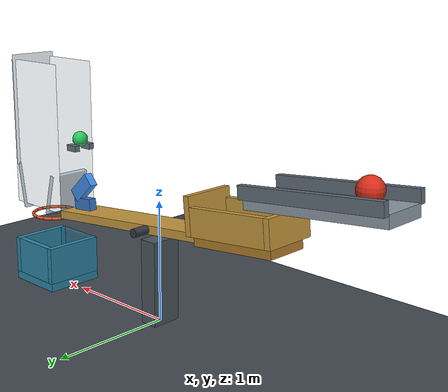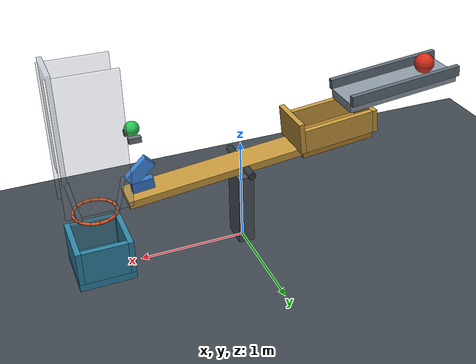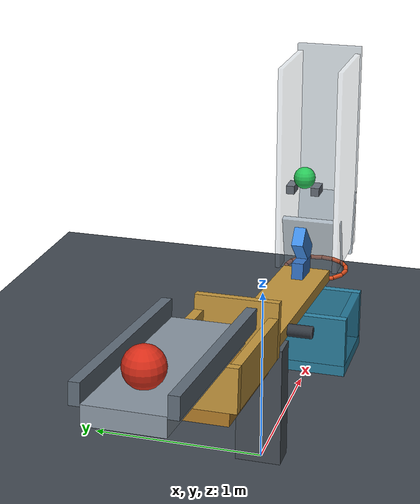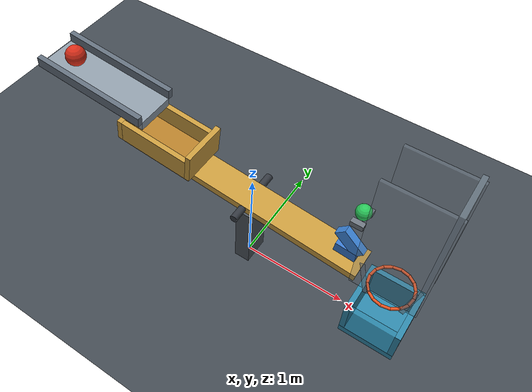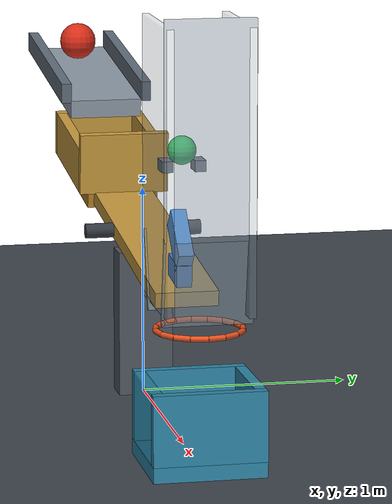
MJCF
<mujoco model="ramp_balance_hoop_cup">
  <compiler angle="radian"/>
  <option timestep="0.002" gravity="0 0 -9.81" integrator="implicitfast" cone="elliptic" iterations="80"/>
  <size njmax="2000" nconmax="400"/>

  <worldbody>
    <light name="main_light" pos="-1 -3 5" dir="0.2 0.5 -1"/>
    <camera name="overview" pos="0 -5 3.1" xyaxes="1 0 0 0 0.40 0.9165"/>

    <geom name="floor" type="plane" size="6 4 0.1" rgba="0.25 0.28 0.31 1" friction="0.8 0.03 0.01" condim="6" solref="0.02 1"/>

    <body name="ramp" pos="-1.581645 0 1.282130" quat="0.9987502604 0 0.0499791693 0">
      <geom name="ramp_surface" type="box" size="0.57 0.18 0.045" rgba="0.55 0.60 0.65 1" friction="0.7 0.005 0.0002" condim="6" solref="0.015 1"/>
      <geom name="ramp_rail_front" type="box" pos="0 -0.205 0.085" size="0.57 0.025 0.05" rgba="0.38 0.43 0.48 1" friction="0.5 0.005 0.0002"/>
      <geom name="ramp_rail_back" type="box" pos="0 0.205 0.085" size="0.57 0.025 0.05" rgba="0.38 0.43 0.48 1" friction="0.5 0.005 0.0002"/>
    </body>

    <body name="ball1" pos="-1.896020 0 1.454376">
      <freejoint name="ball1_free"/>
      <geom name="ball1_sphere" type="sphere" size="0.095" mass="3.2" rgba="0.85 0.18 0.10 1" friction="0.75 0.008 0.0002" condim="6" solref="0.015 1"/>
    </body>

    <body name="balance_support" pos="0 0 0">
      <geom name="balance_support_column" type="box" pos="0 0 0.35" size="0.075 0.13 0.35" rgba="0.30 0.33 0.36 1"/>
      <geom name="balance_support_axle" type="cylinder" pos="0 0 0.80" quat="0.7071067812 0.7071067812 0 0" size="0.035 0.28" rgba="0.20 0.22 0.25 1" contype="0" conaffinity="0"/>
    </body>

    <body name="balance" pos="0 0 0.80" quat="0.9987502604 0 0.0499791693 0">
      <joint name="balance_hinge" type="hinge" axis="0 1 0" ref="0.10" limited="true" range="-0.20 0.10" damping="6" armature="0.02" solreflimit="0.015 1"/>
      <geom name="balance_beam" type="box" pos="-0.085 0 0" size="1.175 0.145 0.035" mass="0.45" rgba="0.78 0.60 0.24 1" friction="0.9 0.01 0.001" condim="6"/>
      <geom name="balance_recess_floor" type="box" pos="-0.91 0 0.005" size="0.36 0.175 0.055" mass="0.10" rgba="0.70 0.49 0.16 1" friction="0.85 0.02 0.003" condim="6" solref="0.02 1"/>
      <geom name="balance_recess_left" type="box" pos="-1.28 0 0.14" size="0.025 0.22 0.11" mass="0.035" rgba="0.78 0.60 0.24 1" friction="0.6 0.01 0.002" condim="6" solref="0.02 1"/>
      <geom name="balance_recess_right" type="box" pos="-0.54 0 0.18" size="0.025 0.22 0.15" mass="0.035" rgba="0.78 0.60 0.24 1" friction="0.6 0.01 0.002" condim="6" solref="0.02 1"/>
      <geom name="balance_recess_front" type="box" pos="-0.91 -0.195 0.14" size="0.345 0.025 0.11" mass="0.04" rgba="0.78 0.60 0.24 1" friction="0.6 0.01 0.002" condim="6" solref="0.02 1"/>
      <geom name="balance_recess_back" type="box" pos="-0.91 0.195 0.14" size="0.345 0.025 0.11" mass="0.04" rgba="0.78 0.60 0.24 1" friction="0.6 0.01 0.002" condim="6" solref="0.02 1"/>
    </body>

    <body name="block" pos="0.923890 0 0.792729" quat="0.9987502604 0 0.0499791693 0">
      <freejoint name="block_free"/>
      <geom name="block_base" type="box" size="0.10 0.035 0.05" mass="0.25" rgba="0.22 0.47 0.80 1" friction="0.8 0.008 0.0005" condim="6" solref="0.015 1"/>
      <geom name="block_striking_face" type="box" pos="0 0 0.14" quat="0.9476507264 0 0.3193087859 0" size="0.13 0.035 0.06" mass="0.15" rgba="0.25 0.55 0.90 1" priority="2" friction="0.03 0.001 0.0001" condim="3" solref="0.015 1"/>
    </body>

    <body name="ball2_support" pos="0.97 0 1.283467">
      <geom name="ball2_support_front" type="box" pos="0 -0.075 0" size="0.055 0.025 0.025" rgba="0.42 0.45 0.49 1" friction="0.35 0.005 0.0005" condim="6" solref="0.015 1"/>
      <geom name="ball2_support_back" type="box" pos="0 0.075 0" size="0.055 0.025 0.025" rgba="0.42 0.45 0.49 1" friction="0.35 0.005 0.0005" condim="6" solref="0.015 1"/>
    </body>

    <body name="ball2" pos="0.97 0 1.35">
      <freejoint name="ball2_free"/>
      <geom name="ball2_sphere" type="sphere" size="0.065" mass="0.08" rgba="0.16 0.78 0.35 1" friction="0.6 0.02 0.005" condim="6" solref="0.02 1"/>
    </body>

    <body name="hoop" pos="1.36 0 0.62">
      <geom name="hoop_ring_01" type="capsule" fromto="0.195 0 0 0.180156 0.074625 0" size="0.013" rgba="0.90 0.32 0.12 1" friction="0.25 0.005 0.001" solref="0.02 1"/>
      <geom name="hoop_ring_02" type="capsule" fromto="0.180156 0.074625 0 0.137886 0.137886 0" size="0.013" rgba="0.90 0.32 0.12 1" friction="0.25 0.005 0.001" solref="0.02 1"/>
      <geom name="hoop_ring_03" type="capsule" fromto="0.137886 0.137886 0 0.074625 0.180156 0" size="0.013" rgba="0.90 0.32 0.12 1" friction="0.25 0.005 0.001" solref="0.02 1"/>
      <geom name="hoop_ring_04" type="capsule" fromto="0.074625 0.180156 0 0 0.195 0" size="0.013" rgba="0.90 0.32 0.12 1" friction="0.25 0.005 0.001" solref="0.02 1"/>
      <geom name="hoop_ring_05" type="capsule" fromto="0 0.195 0 -0.074625 0.180156 0" size="0.013" rgba="0.90 0.32 0.12 1" friction="0.25 0.005 0.001" solref="0.02 1"/>
      <geom name="hoop_ring_06" type="capsule" fromto="-0.074625 0.180156 0 -0.137886 0.137886 0" size="0.013" rgba="0.90 0.32 0.12 1" friction="0.25 0.005 0.001" solref="0.02 1"/>
      <geom name="hoop_ring_07" type="capsule" fromto="-0.137886 0.137886 0 -0.180156 0.074625 0" size="0.013" rgba="0.90 0.32 0.12 1" friction="0.25 0.005 0.001" solref="0.02 1"/>
      <geom name="hoop_ring_08" type="capsule" fromto="-0.180156 0.074625 0 -0.195 0 0" size="0.013" rgba="0.90 0.32 0.12 1" friction="0.25 0.005 0.001" solref="0.02 1"/>
      <geom name="hoop_ring_09" type="capsule" fromto="-0.195 0 0 -0.180156 -0.074625 0" size="0.013" rgba="0.90 0.32 0.12 1" friction="0.25 0.005 0.001" solref="0.02 1"/>
      <geom name="hoop_ring_10" type="capsule" fromto="-0.180156 -0.074625 0 -0.137886 -0.137886 0" size="0.013" rgba="0.90 0.32 0.12 1" friction="0.25 0.005 0.001" solref="0.02 1"/>
      <geom name="hoop_ring_11" type="capsule" fromto="-0.137886 -0.137886 0 -0.074625 -0.180156 0" size="0.013" rgba="0.90 0.32 0.12 1" friction="0.25 0.005 0.001" solref="0.02 1"/>
      <geom name="hoop_ring_12" type="capsule" fromto="-0.074625 -0.180156 0 0 -0.195 0" size="0.013" rgba="0.90 0.32 0.12 1" friction="0.25 0.005 0.001" solref="0.02 1"/>
      <geom name="hoop_ring_13" type="capsule" fromto="0 -0.195 0 0.074625 -0.180156 0" size="0.013" rgba="0.90 0.32 0.12 1" friction="0.25 0.005 0.001" solref="0.02 1"/>
      <geom name="hoop_ring_14" type="capsule" fromto="0.074625 -0.180156 0 0.137886 -0.137886 0" size="0.013" rgba="0.90 0.32 0.12 1" friction="0.25 0.005 0.001" solref="0.02 1"/>
      <geom name="hoop_ring_15" type="capsule" fromto="0.137886 -0.137886 0 0.180156 -0.074625 0" size="0.013" rgba="0.90 0.32 0.12 1" friction="0.25 0.005 0.001" solref="0.02 1"/>
      <geom name="hoop_ring_16" type="capsule" fromto="0.180156 -0.074625 0 0.195 0 0" size="0.013" rgba="0.90 0.32 0.12 1" friction="0.25 0.005 0.001" solref="0.02 1"/>
      <geom name="hoop_left_guide" type="box" pos="-0.195 0 0.235" quat="0.992094 0 -0.125499 0" size="0.02 0.20 0.181" rgba="0.55 0.62 0.68 0.65" friction="0.2 0.005 0.001" solref="0.02 1"/>
      <geom name="hoop_right_guide" type="box" pos="0.195 0 0.26" quat="0.996250 0 0.086521 0" size="0.02 0.20 0.203" rgba="0.55 0.62 0.68 0.65" friction="0.2 0.005 0.001" solref="0.02 1"/>
      <geom name="hoop_right_backstop" type="box" pos="0.24 0 0.92" size="0.02 0.20 0.48" rgba="0.55 0.62 0.68 0.45" friction="0.2 0.005 0.001" solref="0.025 1"/>
      <geom name="hoop_front_guard" type="box" pos="-0.015 -0.18 0.73" size="0.29 0.015 0.63" rgba="0.55 0.62 0.68 0.25" friction="0.2 0.005 0.001" solref="0.02 1"/>
      <geom name="hoop_back_guard" type="box" pos="-0.015 0.18 0.73" size="0.29 0.015 0.63" rgba="0.55 0.62 0.68 0.25" friction="0.2 0.005 0.001" solref="0.02 1"/>
    </body>

    <body name="cup" pos="1.36 0 0">
      <geom name="cup_bottom" type="box" pos="0 0 0.035" size="0.255 0.255 0.035" rgba="0.18 0.52 0.65 1" friction="0.9 0.04 0.01" condim="6" solref="0.025 1"/>
      <geom name="cup_left_wall" type="box" pos="-0.23 0 0.23" size="0.025 0.255 0.16" rgba="0.18 0.52 0.65 1" friction="0.8 0.04 0.01" condim="6" solref="0.025 1"/>
      <geom name="cup_right_wall" type="box" pos="0.23 0 0.23" size="0.025 0.255 0.16" rgba="0.18 0.52 0.65 1" friction="0.8 0.04 0.01" condim="6" solref="0.025 1"/>
      <geom name="cup_front_wall" type="box" pos="0 -0.23 0.23" size="0.205 0.025 0.16" rgba="0.18 0.52 0.65 0.55" friction="0.8 0.04 0.01" condim="6" solref="0.025 1"/>
      <geom name="cup_back_wall" type="box" pos="0 0.23 0.23" size="0.205 0.025 0.16" rgba="0.18 0.52 0.65 1" friction="0.8 0.04 0.01" condim="6" solref="0.025 1"/>
    </body>
  </worldbody>

  <keyframe>
    <key name="start"/>
  </keyframe>
</mujoco>
